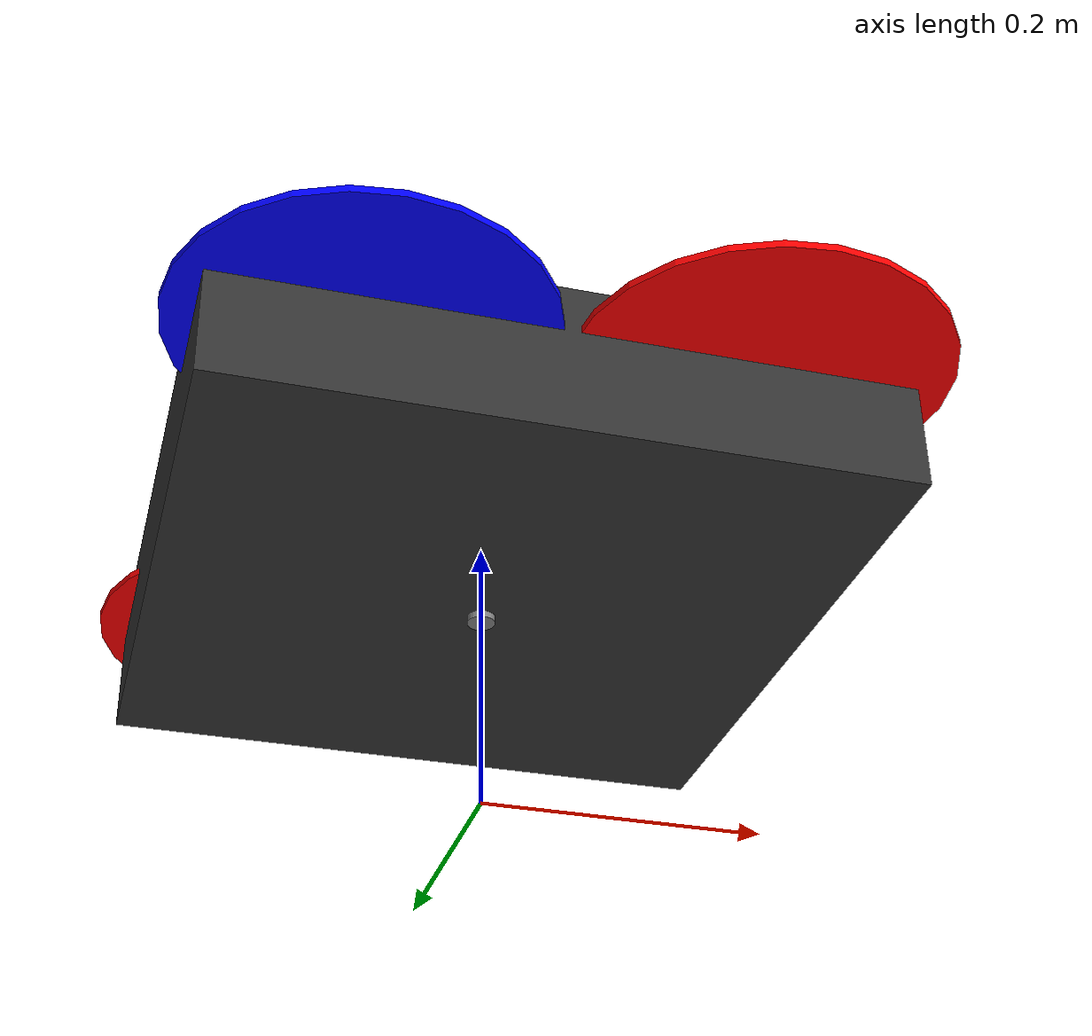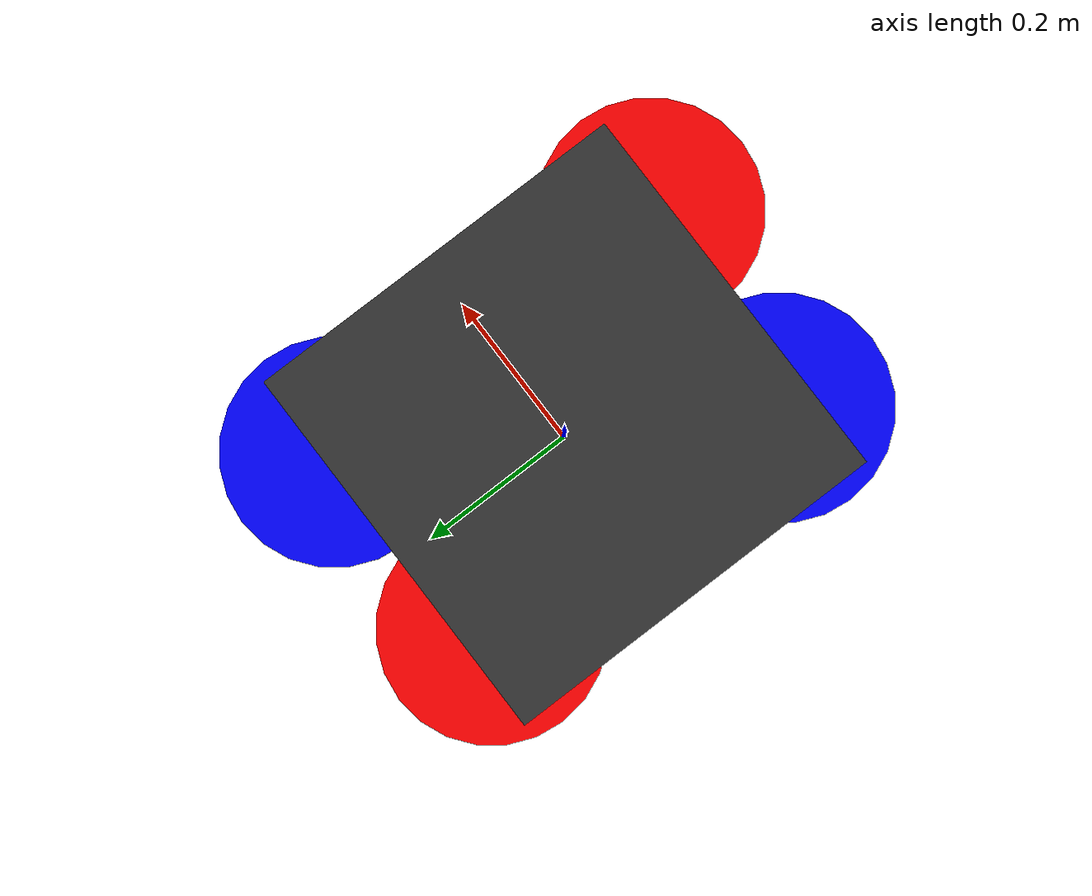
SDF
<?xml version="1.0" ?>
<sdf version="1.9">
  <model name="iris_with_ardupilot">
    <pose>0 0 0.2 0 0 0</pose>

    <link name="base_link">
      <inertial>
        <mass>1.5</mass>
        <inertia>
          <ixx>0.029125</ixx>
          <ixy>0</ixy>
          <ixz>0</ixz>
          <iyy>0.029125</iyy>
          <iyz>0</iyz>
          <izz>0.055225</izz>
        </inertia>
      </inertial>

      <visual name="body_visual">
        <geometry>
          <box>
            <size>0.47 0.47 0.11</size>
          </box>
        </geometry>
        <material>
          <ambient>0.2 0.2 0.2 1</ambient>
          <diffuse>0.2 0.2 0.2 1</diffuse>
        </material>
      </visual>

      <!-- Center marker for orientation (green = forward) -->
      <visual name="center_marker">
        <pose>0.15 0 0 0 0 0</pose>
        <geometry>
          <sphere>
            <radius>0.05</radius>
          </sphere>
        </geometry>
        <material>
          <ambient>0 1 0 1</ambient>
          <diffuse>0 1 0 1</diffuse>
        </material>
      </visual>

      <collision name="collision">
        <geometry>
          <box>
            <size>0.47 0.47 0.11</size>
          </box>
        </geometry>
      </collision>

      <!-- GPS/NavSat Sensor                -->
      <!-- Consumer-grade GPS accuracy      -->
      <sensor name="navsat_sensor" type="navsat">
        <always_on>1</always_on>
        <update_rate>10</update_rate>
        <topic>gps</topic>
        <navsat>
          <position_sensing>
            <horizontal>
              <noise type="gaussian">
                <mean>0.0</mean>
                <stddev>0.5</stddev>
              </noise>
            </horizontal>
            <vertical>
              <noise type="gaussian">
                <mean>0.0</mean>
                <stddev>1.0</stddev>
              </noise>
            </vertical>
          </position_sensing>
          <velocity_sensing>
            <horizontal>
              <noise type="gaussian">
                <mean>0.0</mean>
                <stddev>0.05</stddev>
              </noise>
            </horizontal>
            <vertical>
              <noise type="gaussian">
                <mean>0.0</mean>
                <stddev>0.1</stddev>
              </noise>
            </vertical>
          </velocity_sensing>
        </navsat>
      </sensor>

      <!-- Magnetometer Sensor              -->
      <!-- Earth magnetic field sensing     -->
      <!-- Declination: ~11.5 deg E (San Diego) -->
      <sensor name="magnetometer_sensor" type="magnetometer">
        <always_on>1</always_on>
        <update_rate>50</update_rate>
        <topic>magnetometer</topic>
        <magnetometer>
          <x>
            <noise type="gaussian">
              <mean>0</mean>
              <stddev>0.001</stddev>
              <bias_mean>0.00001</bias_mean>
              <bias_stddev>0.000002</bias_stddev>
            </noise>
          </x>
          <y>
            <noise type="gaussian">
              <mean>0</mean>
              <stddev>0.001</stddev>
              <bias_mean>0.00001</bias_mean>
              <bias_stddev>0.000002</bias_stddev>
            </noise>
          </y>
          <z>
            <noise type="gaussian">
              <mean>0</mean>
              <stddev>0.001</stddev>
              <bias_mean>0.00001</bias_mean>
              <bias_stddev>0.000002</bias_stddev>
            </noise>
          </z>
        </magnetometer>
      </sensor>

      <!-- Barometer Sensor                 -->
      <!-- Atmospheric pressure sensing     -->
      <!-- ~8.3 Pa per meter at sea level   -->
      <sensor name="air_pressure_sensor" type="air_pressure">
        <always_on>1</always_on>
        <update_rate>20</update_rate>
        <topic>air_pressure</topic>
        <air_pressure>
          <reference_altitude>0</reference_altitude>
          <pressure>
            <noise type="gaussian">
              <mean>0</mean>
              <stddev>10</stddev>
            </noise>
          </pressure>
        </air_pressure>
      </sensor>

    </link>

    <!-- Rotor 0 (Front Right, CW)        -->
    <link name="rotor_0">
      <pose>0.13 -0.22 0.023 0 0 0</pose>
      <inertial>
        <mass>0.005</mass>
        <inertia>
          <ixx>9.75e-07</ixx>
          <ixy>0</ixy>
          <ixz>0</ixz>
          <iyy>0.000166704</iyy>
          <iyz>0</iyz>
          <izz>0.000167604</izz>
        </inertia>
      </inertial>
      <visual name="visual">
        <geometry>
          <cylinder>
            <radius>0.128</radius>
            <length>0.005</length>
          </cylinder>
        </geometry>
        <material>
          <ambient>1 0 0 1</ambient>
          <diffuse>1 0 0 1</diffuse>
        </material>
      </visual>
    </link>

    <!-- Rotor 1 (Back Left, CW)          -->
    <link name="rotor_1">
      <pose>-0.13 0.2 0.023 0 0 0</pose>
      <inertial>
        <mass>0.005</mass>
        <inertia>
          <ixx>9.75e-07</ixx>
          <ixy>0</ixy>
          <ixz>0</ixz>
          <iyy>0.000166704</iyy>
          <iyz>0</iyz>
          <izz>0.000167604</izz>
        </inertia>
      </inertial>
      <visual name="visual">
        <geometry>
          <cylinder>
            <radius>0.128</radius>
            <length>0.005</length>
          </cylinder>
        </geometry>
        <material>
          <ambient>1 0 0 1</ambient>
          <diffuse>1 0 0 1</diffuse>
        </material>
      </visual>
    </link>

    <!-- Rotor 2 (Front Left, CCW)        -->
    <link name="rotor_2">
      <pose>0.13 0.22 0.023 0 0 0</pose>
      <inertial>
        <mass>0.005</mass>
        <inertia>
          <ixx>9.75e-07</ixx>
          <ixy>0</ixy>
          <ixz>0</ixz>
          <iyy>0.000166704</iyy>
          <iyz>0</iyz>
          <izz>0.000167604</izz>
        </inertia>
      </inertial>
      <visual name="visual">
        <geometry>
          <cylinder>
            <radius>0.128</radius>
            <length>0.005</length>
          </cylinder>
        </geometry>
        <material>
          <ambient>0 0 1 1</ambient>
          <diffuse>0 0 1 1</diffuse>
        </material>
      </visual>
    </link>

    <!-- Rotor 3 (Back Right, CCW)        -->
    <link name="rotor_3">
      <pose>-0.13 -0.2 0.023 0 0 0</pose>
      <inertial>
        <mass>0.005</mass>
        <inertia>
          <ixx>9.75e-07</ixx>
          <ixy>0</ixy>
          <ixz>0</ixz>
          <iyy>0.000166704</iyy>
          <iyz>0</iyz>
          <izz>0.000167604</izz>
        </inertia>
      </inertial>
      <visual name="visual">
        <geometry>
          <cylinder>
            <radius>0.128</radius>
            <length>0.005</length>
          </cylinder>
        </geometry>
        <material>
          <ambient>0 0 1 1</ambient>
          <diffuse>0 0 1 1</diffuse>
        </material>
      </visual>
    </link>

    <!-- Rotor joints -->
    <joint name="rotor_0_joint" type="revolute">
      <parent>base_link</parent>
      <child>rotor_0</child>
      <axis>
        <xyz>0 0 1</xyz>
        <limit>
          <lower>-1e16</lower>
          <upper>1e16</upper>
        </limit>
      </axis>
    </joint>

    <joint name="rotor_1_joint" type="revolute">
      <parent>base_link</parent>
      <child>rotor_1</child>
      <axis>
        <xyz>0 0 1</xyz>
        <limit>
          <lower>-1e16</lower>
          <upper>1e16</upper>
        </limit>
      </axis>
    </joint>

    <joint name="rotor_2_joint" type="revolute">
      <parent>base_link</parent>
      <child>rotor_2</child>
      <axis>
        <xyz>0 0 1</xyz>
        <limit>
          <lower>-1e16</lower>
          <upper>1e16</upper>
        </limit>
      </axis>
    </joint>

    <joint name="rotor_3_joint" type="revolute">
      <parent>base_link</parent>
      <child>rotor_3</child>
      <axis>
        <xyz>0 0 1</xyz>
        <limit>
          <lower>-1e16</lower>
          <upper>1e16</upper>
        </limit>
      </axis>
    </joint>

    <!-- IMU Sensor Link                  -->
    <!-- 250Hz MEMS IMU with noise        -->
    <link name="imu_link">
      <pose>0 0 0 0 0 0</pose>
      <inertial>
        <mass>0.001</mass>
        <inertia>
          <ixx>1e-05</ixx>
          <ixy>0</ixy>
          <ixz>0</ixz>
          <iyy>1e-05</iyy>
          <iyz>0</iyz>
          <izz>1e-05</izz>
        </inertia>
      </inertial>
      <sensor name="imu_sensor" type="imu">
        <always_on>1</always_on>
        <update_rate>250</update_rate>
        <topic>imu</topic>
        <imu>
          <angular_velocity>
            <x>
              <noise type="gaussian">
                <mean>0</mean>
                <stddev>0.009</stddev>
                <bias_mean>0.0001</bias_mean>
                <bias_stddev>0.00002</bias_stddev>
              </noise>
            </x>
            <y>
              <noise type="gaussian">
                <mean>0</mean>
                <stddev>0.009</stddev>
                <bias_mean>0.0001</bias_mean>
                <bias_stddev>0.00002</bias_stddev>
              </noise>
            </y>
            <z>
              <noise type="gaussian">
                <mean>0</mean>
                <stddev>0.009</stddev>
                <bias_mean>0.0001</bias_mean>
                <bias_stddev>0.00002</bias_stddev>
              </noise>
            </z>
          </angular_velocity>
          <linear_acceleration>
            <x>
              <noise type="gaussian">
                <mean>0</mean>
                <stddev>0.017</stddev>
                <bias_mean>0.001</bias_mean>
                <bias_stddev>0.0002</bias_stddev>
              </noise>
            </x>
            <y>
              <noise type="gaussian">
                <mean>0</mean>
                <stddev>0.017</stddev>
                <bias_mean>0.001</bias_mean>
                <bias_stddev>0.0002</bias_stddev>
              </noise>
            </y>
            <z>
              <noise type="gaussian">
                <mean>0</mean>
                <stddev>0.017</stddev>
                <bias_mean>0.001</bias_mean>
                <bias_stddev>0.0002</bias_stddev>
              </noise>
            </z>
          </linear_acceleration>
        </imu>
      </sensor>
    </link>

    <joint name="imu_joint" type="fixed">
      <parent>base_link</parent>
      <child>imu_link</child>
    </joint>

    <!-- Rangefinder Link                 -->
    <!-- Downward-facing lidar for AGL    -->
    <link name="rangefinder_link">
      <pose>0 0 -0.05 0 0 0</pose>
      <inertial>
        <mass>0.01</mass>
        <inertia>
          <ixx>1e-05</ixx>
          <ixy>0</ixy>
          <ixz>0</ixz>
          <iyy>1e-05</iyy>
          <iyz>0</iyz>
          <izz>1e-05</izz>
        </inertia>
      </inertial>
      <visual name="visual">
        <geometry>
          <cylinder>
            <radius>0.01</radius>
            <length>0.02</length>
          </cylinder>
        </geometry>
        <material>
          <ambient>0.5 0.5 0.5 1</ambient>
          <diffuse>0.5 0.5 0.5 1</diffuse>
        </material>
      </visual>
      <sensor name="rangefinder" type="gpu_lidar">
        <!-- Pointing straight down (pitch = -90 deg = -1.5708 rad) -->
        <pose>0 0 0 0 1.5708 0</pose>
        <always_on>1</always_on>
        <update_rate>20</update_rate>
        <topic>rangefinder</topic>
        <ray>
          <scan>
            <horizontal>
              <samples>1</samples>
              <resolution>1</resolution>
              <min_angle>0</min_angle>
              <max_angle>0</max_angle>
            </horizontal>
            <vertical>
              <samples>1</samples>
              <resolution>1</resolution>
              <min_angle>0</min_angle>
              <max_angle>0</max_angle>
            </vertical>
          </scan>
          <range>
            <min>0.1</min>
            <max>40.0</max>
            <resolution>0.01</resolution>
          </range>
          <noise>
            <type>gaussian</type>
            <mean>0</mean>
            <stddev>0.02</stddev>
          </noise>
        </ray>
        <visualize>false</visualize>
      </sensor>
    </link>

    <joint name="rangefinder_joint" type="fixed">
      <parent>base_link</parent>
      <child>rangefinder_link</child>
    </joint>

    <!-- ArduPilot Plugin                 -->
    <plugin filename="ArduPilotPlugin" name="ArduPilotPlugin">
      <!-- Network Configuration -->
      <fdm_addr>127.0.0.1</fdm_addr>
      <fdm_port_in>9002</fdm_port_in>
      <fdm_port_out>9003</fdm_port_out>
      <connectionTimeoutMaxCount>5</connectionTimeoutMaxCount>

      <!-- Simulation Settings -->
      <lock_step>1</lock_step>
      <have_32_channels>0</have_32_channels>

      <!-- Coordinate Transforms -->
      <modelXYZToAirplaneXForwardZDown>0 0 0 3.141593 0 0</modelXYZToAirplaneXForwardZDown>
      <gazeboXYZToNED>0 0 0 3.141593 0 0</gazeboXYZToNED>

      <!-- Sensor Reference -->
      <imuName>imu_link::imu_sensor</imuName>

      <!-- Control Channel 0: Front Right (CW) -->
      <control channel="0">
        <jointName>rotor_0_joint</jointName>
        <useForce>1</useForce>
        <multiplier>838</multiplier>
        <offset>-0.5</offset>
        <servo_min>1000</servo_min>
        <servo_max>2000</servo_max>
        <type>VELOCITY</type>
        <p_gain>0.20</p_gain>
        <i_gain>0</i_gain>
        <d_gain>0</d_gain>
        <i_max>0</i_max>
        <i_min>0</i_min>
        <cmd_max>2.5</cmd_max>
        <cmd_min>-2.5</cmd_min>
      </control>

      <!-- Control Channel 1: Back Left (CW) -->
      <control channel="1">
        <jointName>rotor_1_joint</jointName>
        <useForce>1</useForce>
        <multiplier>838</multiplier>
        <offset>-0.5</offset>
        <servo_min>1000</servo_min>
        <servo_max>2000</servo_max>
        <type>VELOCITY</type>
        <p_gain>0.20</p_gain>
        <i_gain>0</i_gain>
        <d_gain>0</d_gain>
        <i_max>0</i_max>
        <i_min>0</i_min>
        <cmd_max>2.5</cmd_max>
        <cmd_min>-2.5</cmd_min>
      </control>

      <!-- Control Channel 2: Front Left (CCW) -->
      <control channel="2">
        <jointName>rotor_2_joint</jointName>
        <useForce>1</useForce>
        <multiplier>838</multiplier>
        <offset>-0.5</offset>
        <servo_min>1000</servo_min>
        <servo_max>2000</servo_max>
        <type>VELOCITY</type>
        <p_gain>0.20</p_gain>
        <i_gain>0</i_gain>
        <d_gain>0</d_gain>
        <i_max>0</i_max>
        <i_min>0</i_min>
        <cmd_max>2.5</cmd_max>
        <cmd_min>-2.5</cmd_min>
      </control>

      <!-- Control Channel 3: Back Right (CCW) -->
      <control channel="3">
        <jointName>rotor_3_joint</jointName>
        <useForce>1</useForce>
        <multiplier>838</multiplier>
        <offset>-0.5</offset>
        <servo_min>1000</servo_min>
        <servo_max>2000</servo_max>
        <type>VELOCITY</type>
        <p_gain>0.20</p_gain>
        <i_gain>0</i_gain>
        <d_gain>0</d_gain>
        <i_max>0</i_max>
        <i_min>0</i_min>
        <cmd_max>2.5</cmd_max>
        <cmd_min>-2.5</cmd_min>
      </control>
    </plugin>

  </model>
</sdf>
